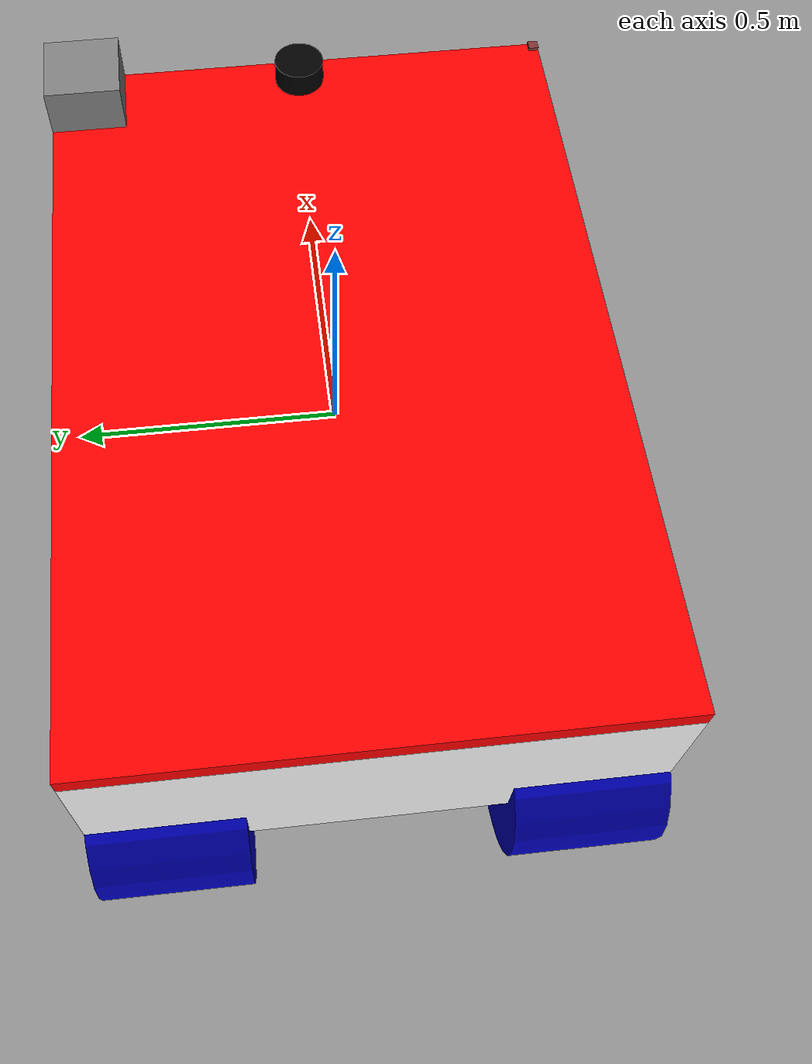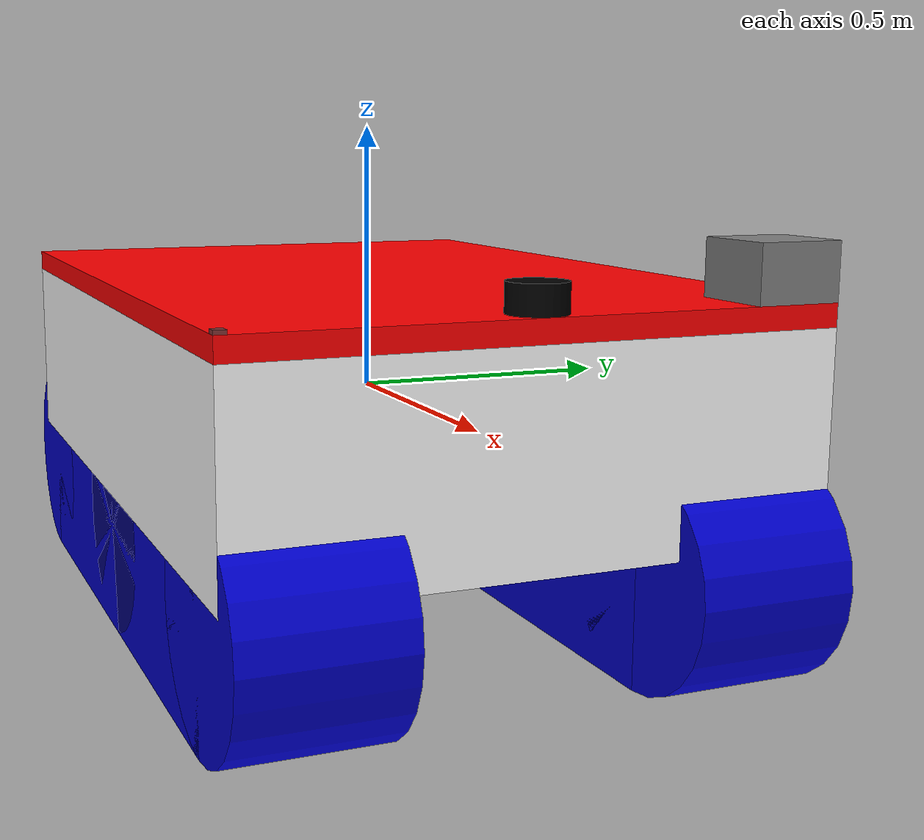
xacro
<?xml version="1.0"?>
<robot name="my_robot" xmlns:xacro="http://ros.org/wiki/xacro">

  <!-- Define robot constants -->
  <xacro:property name="base_length" value="1.50"/>
  <xacro:property name="base_width" value="1.03"/>
  <xacro:property name="base_height" value="0.36"/>
  <xacro:property name="base_zoff" value="0.16"/>

  <xacro:property name="plate_height" value="0.04"/>

  <xacro:property name="wheel_radius" value="0.2"/>
  <xacro:property name="wheel_width" value="0.28"/>
  <xacro:property name="wheel_zoff" value="0.24"/>

  <xacro:property name="wheel_box_length" value="1.25"/>

  <xacro:property name="lidar_radius" value="0.05"/>
  <xacro:property name="lidar_length" value="0.05"/>
  <xacro:property name="gps_length" value="0.15"/>
  <xacro:property name="gps_width" value="0.15"/>
  <xacro:property name="gps_height" value="0.1"/>
  <xacro:property name="imu_length" value="0.02"/>
  <xacro:property name="imu_width" value="0.02"/>
  <xacro:property name="imu_height" value="0.007"/>

  <!-- Define some commonly used intertial properties  -->
  <xacro:macro name="box_inertia" params="m w h d">
    <inertial>
      <origin xyz="0 0 0" rpy="${pi/2} 0 ${pi/2}"/>
      <mass value="${m}"/>
      <inertia ixx="${(m/12) * (h*h + d*d)}" ixy="0.0" ixz="0.0" iyy="${(m/12) * (w*w + d*d)}" iyz="0.0" izz="${(m/12) * (w*w + h*h)}"/>
    </inertial>
  </xacro:macro>

  <xacro:macro name="cylinder_inertia" params="m r h">
    <inertial>
      <origin xyz="0 0 0" rpy="${pi/2} 0 0" />
      <mass value="${m}"/>
      <inertia ixx="${(m/12) * (3*r*r + h*h)}" ixy = "0" ixz = "0" iyy="${(m/12) * (3*r*r + h*h)}" iyz = "0" izz="${(m/2) * (r*r)}"/>
    </inertial>
  </xacro:macro>

  <!-- Robot Base -->
    <link name="base_link">
        <visual>
        <geometry>
            <box size="${base_length} ${base_width} ${base_height}"/>
        </geometry>
        <material name="White">
            <color rgba="1 1 1 1.0"/>
        </material>
        </visual>

        <collision>
        <geometry>
            <box size="${base_length} ${base_width} ${base_height}"/>
        </geometry>
        </collision>

        <xacro:box_inertia m="200" w="${base_width}" d="${base_length}" h="${base_height}"/>
    </link>

   <!-- Robot Footprint -->
    <link name="base_footprint">
        <xacro:box_inertia m="0" w="0" d="0" h="0"/>
    </link>

    <joint name="base_joint" type="fixed">
        <parent link="base_link"/>
        <child link="base_footprint"/>
        <origin xyz="0.0 0.0 ${-(base_zoff)}" rpy="0 0 0"/>
    </joint>

    <!-- Robot Plate -->
  <link name="plate_link">
    <visual>
      <geometry>
        <box size="${base_length} ${base_width} ${plate_height}"/>
      </geometry>
      <material name="Red">
        <color rgba="1 0 0 1.0"/>
      </material>
    </visual>
    <collision>
      <geometry>
        <box size="${base_length} ${base_width} ${plate_height}"/>
      </geometry>
    </collision>
    <xacro:box_inertia m="10" w="${base_width}" d="${base_length}" h="${plate_height}"/>
  </link>

  <!-- Plate to Base joint -->
  <joint name="plate_base_joint" type="prismatic">
    <parent link="base_link"/>
    <child link="plate_link"/>
    <origin xyz="0 0 ${base_height/2 + plate_height/2}" rpy="0 0 0"/>
    <axis xyz="0 0 1"/>
    <limit lower="0" upper="1" effort="1000" velocity="0.1"/>
  </joint>

  <!-- Wheels -->
  <xacro:macro name="wheel" params="name y">
    <link name="${name}_link">
      <visual>
        <geometry>
          <cylinder radius="${wheel_radius}" length="${wheel_width}"/>
        </geometry>
        <material name="Blue">
          <color rgba="0 0 0.5 1.0"/>
        </material>
      </visual>
      <collision>
        <geometry>
          <cylinder radius="${wheel_radius}" length="${wheel_width}"/>
        </geometry>
      </collision>
      <xacro:cylinder_inertia m="25" r="${wheel_radius}" h="${wheel_width}"/>
    </link>

    <!-- Wheel joint -->
    <joint name="${name}_joint" type="continuous">
      <parent link="base_link"/>
      <child link="${name}_link"/>
      <origin xyz="0 ${y} ${-wheel_zoff}" rpy="1.5707 0 0"/>
      <axis xyz="0 1 0"/>
    </joint>
  </xacro:macro>

  <!-- Create left and right wheel -->
  <xacro:wheel name="left_wheel" y="${base_width/2 - wheel_width/2}"/>
  <xacro:wheel name="right_wheel" y="${-base_width/2 + wheel_width/2}"/>

    <!-- Box attached to  Wheel -->
    <xacro:macro name="wheel_box" params="name">
        <link name="${name}_box_link">
            <visual>
                <geometry>
                <box size="${wheel_box_length} ${wheel_radius*2} ${wheel_width}"/>
                </geometry>
                <material name="Blue">
                    <color rgba="0 0 0.8 1.0"/>
                </material>
            </visual>
        </link>

        <joint name="${name}_box_joint" type="fixed">
            <parent link="${name}_link"/>
            <child link="${name}_box_link"/>
            <origin rpy="0 0 0" xyz="0 0 0"/>
        </joint>
    </xacro:macro>

    <!-- Create left and right wheel_boxes -->
    <xacro:wheel_box name="left_wheel" />
    <xacro:wheel_box name="right_wheel" />

    <!-- Create additional front left and right wheel_box_cylinders -->
    <xacro:macro name="additional_f_wheel" params="name">
        <link name="${name}_additional_f_wheel_link">
            <visual>
                <geometry>
                    <cylinder radius="${wheel_radius}" length="${wheel_width}"/>
                </geometry>
                <material name="Blue">
                    <color rgba="0 0 0.8 1.0"/>
                </material>
            </visual>
        </link>

        <joint name="${name}_additional_f_wheel_joint" type="fixed">
            <parent link="${name}_box_link"/>
            <child link="${name}_additional_f_wheel_link"/>
            <origin rpy="0 0 0" xyz="${wheel_box_length/2} 0 0"/>
        </joint>
    </xacro:macro>

    <!-- Create left and right additional wheels for each box -->
    <xacro:additional_f_wheel name="left_wheel"/>
    <xacro:additional_f_wheel name="right_wheel"/>

    <!-- Create additional rear left and right wheel_box_cylinders -->
    <xacro:macro name="additional_r_wheel" params="name">
        <link name="${name}_additional_r_wheel_link">
            <visual>
                <geometry>
                    <cylinder radius="${wheel_radius}" length="${wheel_width}"/>
                </geometry>
                <material name="Blue">
                    <color rgba="0 0 0.8 1.0"/>
                </material>
            </visual>
        </link>

        <joint name="${name}_additional_r_wheel_joint" type="fixed">
            <parent link="${name}_box_link"/>
            <child link="${name}_additional_r_wheel_link"/>
            <origin rpy="0 0 0" xyz="${-wheel_box_length/2} 0 0"/>
        </joint>
    </xacro:macro>

    <!-- Create left and right additional wheels for each box -->
    <xacro:additional_r_wheel name="left_wheel"/>
    <xacro:additional_r_wheel name="right_wheel"/>

    <!-- GPS -->
    <link name="gps_link">
        <visual>
        <geometry>
            <box size="${gps_length} ${gps_width} ${gps_height}"/>
        </geometry>
        <material name="Grey">
            <color rgba="0.5 0.5 .5 1.0"/>
        </material>
        </visual>
        <xacro:box_inertia m="2" w="${gps_width}" d="${gps_length}" h="${gps_height}"/>
    </link>

    <!-- GPS Joint -->
    <joint name="gps_joint" type="fixed">
        <parent link="plate_link"/>
        <child link="gps_link"/>
        <origin xyz="${base_length/2 - gps_length/2 } ${base_width/2 - gps_width/2} ${plate_height/2 + gps_height/2}" rpy="0 0 0"/>
    </joint>

    <!-- Lidar -->
    <link name="lidar_link">
        <visual>
        <geometry>
            <cylinder radius="${lidar_radius}" length="${lidar_length}"/>
        </geometry>
        <material name="Black">
            <color rgba="0 0 0 1.0"/>
        </material>
        </visual>
        <xacro:cylinder_inertia m="0.7" r="${lidar_radius}" h="${lidar_length}"/>
    </link>

    <!-- Lidar Joint -->
    <joint name="lidar_joint" type="fixed">
        <parent link="plate_link"/>
        <child link="lidar_link"/>
        <origin xyz="${base_length/2 - lidar_radius} 0 ${plate_height/2 + lidar_length/2}" rpy="0 0 0"/>
    </joint>

    <!-- imu -->
    <link name="imu_link">
        <visual>
        <geometry>
            <box size="${imu_length} ${imu_width} ${imu_height}"/>
        </geometry>
        <material name="red">
            <color rgba="0.5 0.2 .2 1.0"/>
        </material>
        </visual>
        <xacro:box_inertia m="0.2" w="${gps_width}" d="${gps_length}" h="${gps_height}"/>
    </link>

    <!-- imu Joint -->
    <joint name="imu_joint" type="fixed">
        <parent link="plate_link"/>
        <child link="imu_link"/>
        <origin xyz="${base_length/2 - imu_length/2 } ${-base_width/2 + imu_width/2} ${plate_height/2 + imu_height/2}" rpy="0 0 0"/>
    </joint>

</robot>
